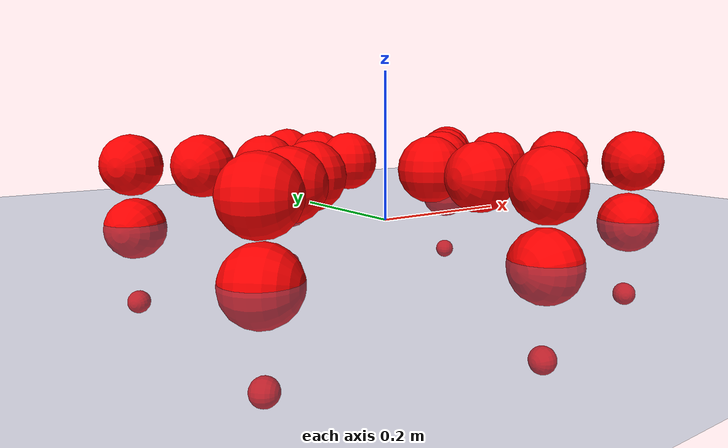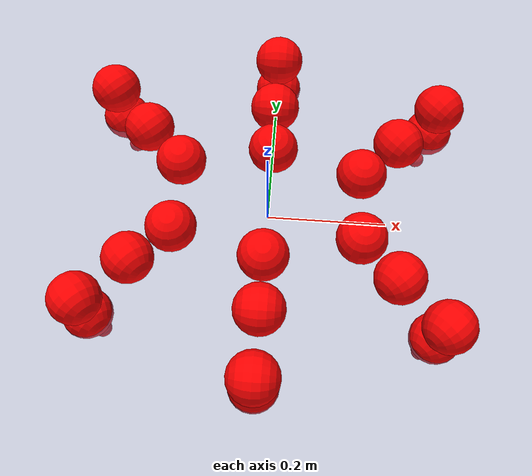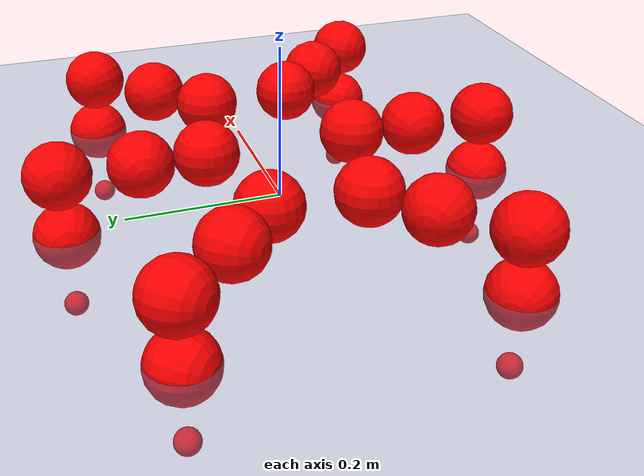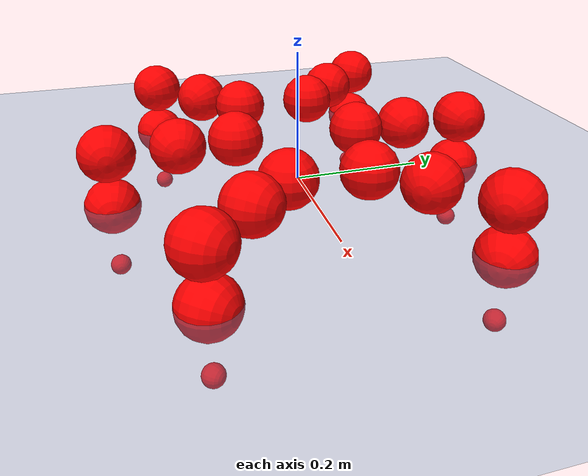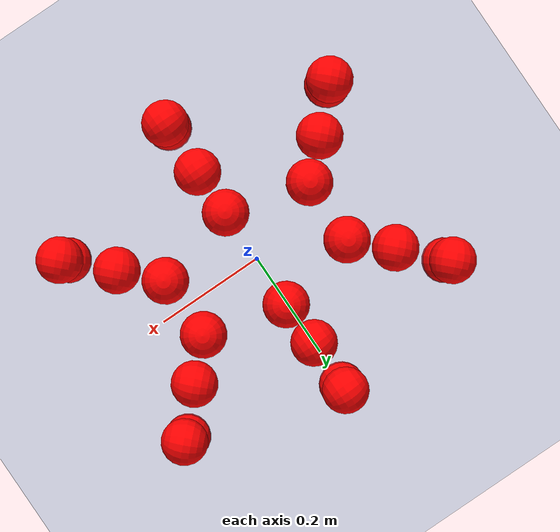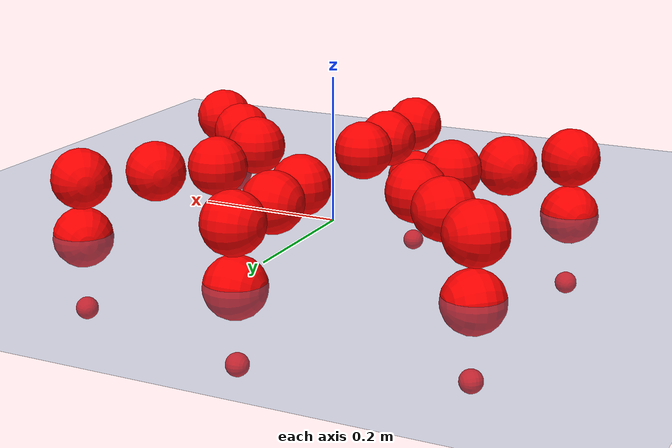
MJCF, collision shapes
<mujoco model="Golem">
  <compiler angle="radian" assetdir="assets" balanceinertia="true" inertiafromgeom="false"/>

  <option timestep="0.005" density="1.2" viscosity="2e-05"/>

  <size nkey="1"/>

  <visual>
    <quality shadowsize="8192"/>
    <map shadowclip="0.5"/>
  </visual>

  <default>
    <default class="/">
      <joint armature="0.01" damping="0.01" frictionloss="0.01"/>
      <geom contype="0" conaffinity="0" group="1" solref="-1000 -80"/>
      <site size="0.01 0.005 0.005" group="5"/>
      <general forcelimited="true" biastype="affine" gainprm="25" biasprm="0 -25 -0.5"/>
      <default class="visual">
        <geom type="mesh" group="2"/>
      </default>
      <default class="collision">
        <geom group="3"/>
      </default>
      <default class="foot">
        <geom size="0.01 0 0" condim="6" group="4" priority="1" solimp="0.015 1 0.01"/>
      </default>
      <default class="reward_collision_sphere">
        <geom group="5" rgba="1 0 0 1"/>
      </default>
    </default>
  </default>

  <asset>
    <texture type="skybox" colorspace="auto" name="//unnamed_texture_0" builtin="gradient" rgb1="0.95 0.95 0.95" rgb2="0.95 0.95 0.95" width="100" height="600"/>
    <texture type="2d" colorspace="auto" name="texplane" builtin="checker" rgb1="0.345 0.575 0.748" rgb2="0.345 0.575 0.748" markrgb="1 1 1" width="512" height="512"/>
    <material name="MatPlane" class="/" texture="texplane" texuniform="true" texrepeat="2 2" specular="0.9"/>
    <mesh name="body" class="/" file="body.stl" scale="0.001 0.001 0.001"/>
    <mesh name="coxa" class="/" file="coxa.stl" scale="0.001 0.001 0.001"/>
    <mesh name="femur" class="/" file="femur.stl" scale="0.001 0.001 0.001"/>
    <mesh name="tibia" class="/" file="tibia.stl" scale="0.001 0.001 0.001"/>
    <mesh name="tarsus" class="/" file="tarsus.stl" scale="0.001 0.001 0.001"/>
  </asset>

  <worldbody>
    <geom name="floor" class="/" size="100 100 0.125" type="plane" group="0" material="MatPlane"/>
    <light name="toplight_shadow" class="/" pos="0 0 5" dir="0.0990148 0.0990148 -0.990148" type="directional" ambient="0.04 0.04 0.04" diffuse="0.55 0.55 0.55" specular="0.12 0.12 0.12"/>
    <light name="toplight_fill" class="/" pos="0 0 5" dir="0.0990148 0.0990148 -0.990148" type="directional" castshadow="false" ambient="0.04 0.04 0.04" diffuse="0.3 0.3 0.3" specular="0.08 0.08 0.08"/>
    <body name="trunk" pos="0.000147397 -0.000529839 -0.00259515" quat="1 -0.000313532 -0.000503054 -0.000701403">
      <inertial pos="0.00310784 -0.00303623 -0.000268699" quat="0.999936 0.000345844 0.00412309 0.0104992" mass="3.80701" diaginertia="0.00727869 0.00648015 0.0250303"/>
      <joint name="//unnamed_joint_0" type="free"/>
      <geom name="//unnamed_geom_1" class="/" pos="0 0 0.0769057" quat="1 0 0 0" type="mesh" rgba="0.9 0.9 0.9 1" mesh="body"/>
      <site name="imu" class="/" pos="0.114302 0.00822796 0.119291" size="0.0102594"/>
      <camera name="track" class="/" pos="0 -1.85997 0" quat="0.707107 0.707107 0 0" mode="trackcom"/>
      <camera name="ego_camera" class="/" pos="0.123003 0 0.120165" quat="-0.5 -0.5 0.5 0.5"/>
      <body name="coxa_RR" pos="-0.16925 -0.0778484 0.0779065" quat="0.382722 -0.000207231 -9.63167e-05 -0.923863">
        <inertial pos="0.00211011 0.00220283 -0.00253216" quat="0.999907 0.0121158 -0.000139185 -0.00628035" mass="0.214716" diaginertia="0.00722929 0.00688622 0.0242454"/>
        <joint name="coxa_joint_RR" class="/" pos="0 0 0" axis="0.00471638 -0.0057599 -0.999972" stiffness="0.0061167" range="-3.08482 3.09603" armature="0.0104897" damping="0" frictionloss="0.011552"/>
        <geom name="//unnamed_geom_2" class="/" type="mesh" rgba="0.2 0.2 0.2 1" mesh="coxa"/>
        <geom name="//unnamed_geom_3" class="reward_collision_sphere" size="0.0410375" pos="-0.0283852 0 0"/>
        <body name="femur_RR" pos="0.0536438 -0.00212619 -0.000538243" quat="0.500089 -0.500056 0.500056 0.499799">
          <inertial pos="-0.000130377 4.62797e-05 0.00277632" quat="0.999913 0.00551704 -0.0103312 0.0061472" mass="0.210372" diaginertia="0.00771995 0.0066092 0.0246715"/>
          <joint name="femur_joint_RR" class="/" pos="0 0 0" axis="0.00011626 -0.000965707 -1" range="-3.09491 3.09377" armature="0.0110255" damping="0.0164269" frictionloss="0.010141"/>
          <geom name="//unnamed_geom_4" class="/" type="mesh" rgba="0.9 0.9 0.9 1" mesh="femur"/>
          <geom name="//unnamed_geom_5" class="reward_collision_sphere" size="0.0410375"/>
          <body name="tibia_RR" pos="-0.00229536 -0.0980003 0.00157701" quat="8.16725e-05 1 -0.000296498 0.000158317">
            <inertial pos="5.73025e-05 0.000669697 0.000682044" quat="1 0.000316376 0.000751193 0.000386599" mass="0.212306" diaginertia="0.00745679 0.00681579 0.0245464"/>
            <joint name="tibia_joint_RR" class="/" pos="0 0 0" axis="0.0038446 -0.00350619 0.999986" range="-3.12725 3.15927" armature="0.00870277" damping="0.0143332" frictionloss="0.00993386"/>
            <geom name="//unnamed_geom_6" class="/" type="mesh" rgba="0.2 0.2 0.2 1" mesh="tibia"/>
            <geom name="//unnamed_geom_7" class="reward_collision_sphere" size="0.0410375"/>
            <body name="tarsus_RR" pos="0.082668 0.00203842 -0.000212493" quat="0.999999 -0.000944142 0.00100987 -0.000293129">
              <inertial pos="0.0599108 -0.000281885 0.00242285" quat="0.505887 0.507876 0.494336 0.491703" mass="0.213042" diaginertia="0.0075271 0.00668935 0.0245024"/>
              <joint name="tarsus_joint_RR" class="/" pos="0 0 0" axis="0.0124499 -0.00496352 0.99991" range="-3.19545 3.15211" armature="0.00913135" damping="0.0165397" frictionloss="0.010243"/>
              <geom name="//unnamed_geom_8" class="/" type="mesh" rgba="0.9 0.9 0.9 1" mesh="tarsus"/>
              <geom name="foot_1" class="foot" size="0.00966371" pos="0.105972 0 0" quat="0 -0.707107 0 0.707107"/>
              <geom name="//unnamed_geom_10" class="reward_collision_sphere" size="0.0410375"/>
              <geom name="//unnamed_geom_11" class="reward_collision_sphere" size="0.0153891" pos="0.101714 0 0"/>
              <site name="foot_1" class="foot" pos="0.105972 0 0" quat="0 -0.707107 0 0.707107" size="0.0102594"/>
            </body>
          </body>
        </body>
      </body>
      <body name="coxa_RM" pos="-0.000477811 -0.123858 0.0795139" quat="0.706943 0.000163341 -0.000493088 -0.70727">
        <inertial pos="-0.000386022 0.000409689 -0.00149261" quat="1 0.000466382 -0.000114255 -0.00051035" mass="0.207735" diaginertia="0.00747051 0.00698004 0.0256295"/>
        <joint name="coxa_joint_RM" class="/" pos="0 0 0" axis="-0.000158363 0.000154353 -1" range="-3.13257 3.08207" armature="0.00931534" damping="0.0201854" frictionloss="0.0115713"/>
        <geom name="//unnamed_geom_12" class="/" type="mesh" rgba="0.2 0.2 0.2 1" mesh="coxa"/>
        <geom name="//unnamed_geom_13" class="reward_collision_sphere" size="0.0410375" pos="-0.0283852 0 0"/>
        <body name="femur_RM" pos="0.0568424 0.000723767 -0.00186799" quat="0.499992 -0.499967 0.49993 0.500111">
          <inertial pos="-0.000505522 0.00226206 -0.00029483" quat="0.999997 0.00113692 0.00184374 0.0011734" mass="0.224714" diaginertia="0.00748073 0.00707456 0.0243014"/>
          <joint name="femur_joint_RM" class="/" pos="0 0 0" axis="0.00196697 0.00079631 -0.999998" range="-3.10383 3.1954" armature="0.0114829" damping="0.0210588" frictionloss="0.0108511"/>
          <geom name="//unnamed_geom_14" class="/" type="mesh" rgba="0.9 0.9 0.9 1" mesh="femur"/>
          <geom name="//unnamed_geom_15" class="reward_collision_sphere" size="0.0410375"/>
          <body name="tibia_RM" pos="6.94457e-05 -0.100355 -0.000659752" quat="0.000124276 1 -6.1277e-05 9.45025e-05">
            <inertial pos="-0.000876066 0.000258122 0.00208826" quat="0.999988 0.00470654 -0.000411492 -0.0012456" mass="0.217914" diaginertia="0.00767637 0.00694822 0.0241757"/>
            <joint name="tibia_joint_RM" class="/" pos="0 0 0" axis="0.00266234 -0.000643967 0.999996" stiffness="0.00029697" range="-3.08671 3.1884" armature="0.00999873" damping="0.0192484" frictionloss="0.0106263"/>
            <geom name="//unnamed_geom_16" class="/" type="mesh" rgba="0.2 0.2 0.2 1" mesh="tibia"/>
            <geom name="//unnamed_geom_17" class="reward_collision_sphere" size="0.0410375"/>
            <body name="tarsus_RM" pos="0.0841035 0.000457966 0.00170345" quat="0.999999 0.000611152 0.000291745 -0.00099549">
              <inertial pos="0.0563904 -0.00180227 -0.000164334" quat="0.501081 0.500599 0.501507 0.4968" mass="0.223809" diaginertia="0.00774793 0.00703781 0.0251411"/>
              <joint name="tarsus_joint_RM" class="/" pos="0 0 0" axis="0.0126536 -0.00112248 0.999919" range="-3.08937 3.11679" armature="0.00882713" damping="0.0113069" frictionloss="0.0109802"/>
              <geom name="//unnamed_geom_18" class="/" type="mesh" rgba="0.9 0.9 0.9 1" mesh="tarsus"/>
              <geom name="foot_2" class="foot" size="0.00922485" pos="0.105972 0 0" quat="0 -0.707107 0 0.707107"/>
              <geom name="//unnamed_geom_20" class="reward_collision_sphere" size="0.0410375"/>
              <geom name="//unnamed_geom_21" class="reward_collision_sphere" size="0.0153891" pos="0.101714 0 0"/>
              <site name="foot_2" class="foot" pos="0.105972 0 0" quat="0 -0.707107 0 0.707107" size="0.0102594"/>
            </body>
          </body>
        </body>
      </body>
      <body name="coxa_RF" pos="0.17098 -0.0767572 0.0786034" quat="0.92381 0.000126107 0.000317785 -0.382852">
        <inertial pos="-0.000502205 -0.000811632 -0.00196731" quat="0.999911 -0.00722334 0.0100173 -0.00499961" mass="0.213534" diaginertia="0.00748216 0.00687833 0.0247001"/>
        <joint name="coxa_joint_RF" class="/" pos="0 0 0" axis="0.00460743 0.00546775 -0.999974" range="-3.15441 3.08573" armature="0.00997239" damping="0.00712058" frictionloss="0.0107976"/>
        <geom name="//unnamed_geom_22" class="/" type="mesh" rgba="0.2 0.2 0.2 1" mesh="coxa"/>
        <geom name="//unnamed_geom_23" class="reward_collision_sphere" size="0.0410375" pos="-0.0283852 0 0"/>
        <body name="femur_RF" pos="0.056558 -0.00175364 0.00196327" quat="0.499341 -0.499719 0.500534 0.500406">
          <inertial pos="0.000303276 -0.000931961 -0.00155013" quat="0.999902 -0.00567761 -0.00984528 -0.00819049" mass="0.214531" diaginertia="0.00726436 0.00673864 0.0242281"/>
          <joint name="femur_joint_RF" class="/" pos="0 0 0" axis="0.00427969 0.0121999 -0.999916" range="-3.08433 3.1491" armature="0.00989671" damping="0.00881465" frictionloss="0.0101796"/>
          <geom name="//unnamed_geom_24" class="/" type="mesh" rgba="0.9 0.9 0.9 1" mesh="femur"/>
          <geom name="//unnamed_geom_25" class="reward_collision_sphere" size="0.0410375"/>
          <body name="tibia_RF" pos="-0.000647881 -0.0999387 0.0010814" quat="-0.000760906 0.999999 -0.000801027 -0.00064921">
            <inertial pos="0.000238199 -0.00084837 -0.00187222" quat="0.999983 0.00546536 0.000611178 -0.00167627" mass="0.224838" diaginertia="0.0073983 0.00690284 0.0252556"/>
            <joint name="tibia_joint_RF" class="/" pos="0 0 0" axis="0.00177913 0.00395945 0.999991" stiffness="0.0194114" range="-3.19598 3.12108" armature="0.00969942" damping="0.0338322" frictionloss="0.00885961"/>
            <geom name="//unnamed_geom_26" class="/" type="mesh" rgba="0.2 0.2 0.2 1" mesh="tibia"/>
            <geom name="//unnamed_geom_27" class="reward_collision_sphere" size="0.0410375"/>
            <body name="tarsus_RF" pos="0.0846646 -0.00306017 0.000247674" quat="1 -2.42949e-05 -4.34035e-05 -4.74337e-05">
              <inertial pos="0.059158 0.000789491 0.000398589" quat="0.507118 0.493373 0.504994 0.494363" mass="0.205957" diaginertia="0.00706332 0.00657399 0.0242778"/>
              <joint name="tarsus_joint_RF" class="/" pos="0 0 0" axis="8.28982e-05 -0.000157681 1" stiffness="0.00699096" range="-3.14453 3.11419" armature="0.0092814" damping="0.0073172" frictionloss="0.0116854"/>
              <geom name="//unnamed_geom_28" class="/" type="mesh" rgba="0.9 0.9 0.9 1" mesh="tarsus"/>
              <geom name="foot_3" class="foot" size="0.0111622" pos="0.105972 0 0" quat="0 -0.707107 0 0.707107"/>
              <geom name="//unnamed_geom_30" class="reward_collision_sphere" size="0.0410375"/>
              <geom name="//unnamed_geom_31" class="reward_collision_sphere" size="0.0153891" pos="0.101714 0 0"/>
              <site name="foot_3" class="foot" pos="0.105972 0 0" quat="0 -0.707107 0 0.707107" size="0.0102594"/>
            </body>
          </body>
        </body>
      </body>
      <body name="coxa_LR" pos="-0.167427 0.0799876 0.0788265" quat="0.382444 0.000731307 4.37318e-05 0.923979">
        <inertial pos="-0.00267358 0.00160444 -0.0012545" quat="0.999986 -0.00366296 -0.00344884 0.00146604" mass="0.220837" diaginertia="0.00745445 0.00681014 0.0253908"/>
        <joint name="coxa_joint_LR" class="/" pos="0 0 0" axis="-0.0117441 0.00352506 -0.999925" stiffness="0.0156782" range="-3.1948 3.15867" armature="0.0101458" damping="0.0151221" frictionloss="0.0114501"/>
        <geom name="//unnamed_geom_32" class="/" type="mesh" rgba="0.2 0.2 0.2 1" mesh="coxa"/>
        <geom name="//unnamed_geom_33" class="reward_collision_sphere" size="0.0410375" pos="-0.0283852 0 0"/>
        <body name="femur_LR" pos="0.0563343 0.001884 0.000380808" quat="0.500324 -0.500648 0.499998 0.499029">
          <inertial pos="-0.000497566 0.00226575 0.00221337" quat="0.999998 0.00195453 0.00104194 -5.16103e-05" mass="0.204519" diaginertia="0.00763929 0.00664114 0.0237887"/>
          <joint name="femur_joint_LR" class="/" pos="0 0 0" axis="0.00410057 -0.00125224 0.999991" range="-3.19608 3.19073" armature="0.00999183" damping="0.0112062" frictionloss="0.00983679"/>
          <geom name="//unnamed_geom_34" class="/" type="mesh" rgba="0.9 0.9 0.9 1" mesh="femur"/>
          <geom name="//unnamed_geom_35" class="reward_collision_sphere" size="0.0410375"/>
          <body name="tibia_LR" pos="0.000647493 -0.100662 -0.00264163" quat="0.000640016 0.999999 0.000609084 0.000870754">
            <inertial pos="-0.002738 0.00248009 0.00208842" quat="0.999926 -0.000352453 0.000106644 0.0121282" mass="0.22274" diaginertia="0.00780892 0.00732207 0.0246313"/>
            <joint name="tibia_joint_LR" class="/" pos="0 0 0" axis="-0.00247756 -0.00615216 -0.999978" range="-3.1316 3.18431" armature="0.00920122" damping="0" frictionloss="0.0103158"/>
            <geom name="//unnamed_geom_36" class="/" type="mesh" rgba="0.2 0.2 0.2 1" mesh="tibia"/>
            <geom name="//unnamed_geom_37" class="reward_collision_sphere" size="0.0410375"/>
            <body name="tarsus_LR" pos="0.0853224 -0.00166459 -0.000134485" quat="1 2.87062e-05 7.31235e-05 -0.000125116">
              <inertial pos="0.0565079 -0.00125495 0.000943673" quat="0.500564 0.499448 0.500884 0.499101" mass="0.207358" diaginertia="0.00735245 0.00670425 0.0251752"/>
              <joint name="tarsus_joint_LR" class="/" pos="0 0 0" axis="-0.00300449 -0.00166297 -0.999994" stiffness="0.00961245" range="-3.16544 3.1935" armature="0.0101813" damping="0.00727535" frictionloss="0.00885937"/>
              <geom name="//unnamed_geom_38" class="/" type="mesh" rgba="0.9 0.9 0.9 1" mesh="tarsus"/>
              <geom name="foot_4" class="foot" size="0.0113678" pos="0.105972 0 0" quat="0.707107 0 -0.707107 0"/>
              <geom name="//unnamed_geom_40" class="reward_collision_sphere" size="0.0410375"/>
              <geom name="//unnamed_geom_41" class="reward_collision_sphere" size="0.0153891" pos="0.101714 0 0"/>
              <site name="foot_4" class="foot" pos="0.105972 0 0" quat="0.707107 0 -0.707107 0" size="0.0102594"/>
            </body>
          </body>
        </body>
      </body>
      <body name="coxa_LM" pos="0.0018317 0.122145 0.0762847" quat="0.707116 0.000293281 0.000849299 0.707097">
        <inertial pos="-0.000403321 -0.000736047 -0.000586277" quat="0.999992 0.00260765 -0.00293 0.000904114" mass="0.2138" diaginertia="0.00803432 0.00715 0.0254952"/>
        <joint name="coxa_joint_LM" class="/" pos="0 0 0" axis="0.0120105 0.00733948 -0.999901" range="-3.15561 3.1607" armature="0.0115357" damping="0.00859718" frictionloss="0.0103594"/>
        <geom name="//unnamed_geom_42" class="/" type="mesh" rgba="0.2 0.2 0.2 1" mesh="coxa"/>
        <geom name="//unnamed_geom_43" class="reward_collision_sphere" size="0.0410375" pos="-0.0283852 0 0"/>
        <body name="femur_LM" pos="0.0531935 0.00268916 -0.000674123" quat="0.500185 -0.499548 0.499985 0.500281">
          <inertial pos="-0.00217862 0.000807999 0.000347105" quat="0.999941 -0.00797307 0.00572408 0.00475055" mass="0.210192" diaginertia="0.00730609 0.00671268 0.0238816"/>
          <joint name="femur_joint_LM" class="/" pos="0 0 0" axis="-0.00324252 -0.0115816 0.999928" stiffness="0.00859985" range="-3.10751 3.14086" armature="0.00899362" damping="0.00717804" frictionloss="0.00942295"/>
          <geom name="//unnamed_geom_44" class="/" type="mesh" rgba="0.9 0.9 0.9 1" mesh="femur"/>
          <geom name="//unnamed_geom_45" class="reward_collision_sphere" size="0.0410375"/>
          <body name="tibia_LM" pos="-0.000580795 -0.0981025 -0.000696127" quat="0.000748717 0.999999 0.000993599 -0.000855782">
            <inertial pos="0.00293009 -0.000555806 -0.000237358" quat="0.999995 -0.0016397 -0.0018845 0.00169635" mass="0.225328" diaginertia="0.00762034 0.00699393 0.0251486"/>
            <joint name="tibia_joint_LM" class="/" pos="0 0 0" axis="0.00555717 -0.00664431 -0.999962" stiffness="0.00383019" range="-3.10436 3.08199" armature="0.00968823" damping="0.0138691" frictionloss="0.0112038"/>
            <geom name="//unnamed_geom_46" class="/" type="mesh" rgba="0.2 0.2 0.2 1" mesh="tibia"/>
            <geom name="//unnamed_geom_47" class="reward_collision_sphere" size="0.0410375"/>
            <body name="tarsus_LM" pos="0.0822473 -0.00188474 -0.000189801" quat="1 1.5238e-05 2.33961e-05 -6.66e-05">
              <inertial pos="0.0538471 -0.00140169 -0.000497268" quat="0.511373 0.497439 0.49878 0.492209" mass="0.219815" diaginertia="0.00747062 0.00708394 0.0244677"/>
              <joint name="tarsus_joint_LM" class="/" pos="0 0 0" axis="-0.0117223 0.00847967 -0.999895" stiffness="0.00230711" range="-3.13317 3.13328" armature="0.00970818" damping="0.00752951" frictionloss="0.0102553"/>
              <geom name="//unnamed_geom_48" class="/" type="mesh" rgba="0.9 0.9 0.9 1" mesh="tarsus"/>
              <geom name="foot_5" class="foot" size="0.0114063" pos="0.105972 0 0" quat="0.707107 0 -0.707107 0"/>
              <geom name="//unnamed_geom_50" class="reward_collision_sphere" size="0.0410375"/>
              <geom name="//unnamed_geom_51" class="reward_collision_sphere" size="0.0153891" pos="0.101714 0 0"/>
              <site name="foot_5" class="foot" pos="0.105972 0 0" quat="0.707107 0 -0.707107 0" size="0.0102594"/>
            </body>
          </body>
        </body>
      </body>
      <body name="coxa_LF" pos="0.169074 0.0770865 0.0756188" quat="0.924065 -0.000272665 -0.000793384 0.382234">
        <inertial pos="-0.000565379 0.000571701 -0.00234652" quat="0.999947 -0.00562899 0.0031497 -0.00805666" mass="0.212795" diaginertia="0.0073863 0.00681808 0.0250844"/>
        <joint name="coxa_joint_LF" class="/" pos="0 0 0" axis="0.000170651 -0.00138844 -0.999999" range="-3.19524 3.13544" armature="0.0116334" damping="0.0204698" frictionloss="0.00916213"/>
        <geom name="//unnamed_geom_52" class="/" type="mesh" rgba="0.2 0.2 0.2 1" mesh="coxa"/>
        <geom name="//unnamed_geom_53" class="reward_collision_sphere" size="0.0410375" pos="-0.0283852 0 0"/>
        <body name="femur_LF" pos="0.0576511 0.000844953 0.000515037" quat="0.500373 -0.499473 0.499517 0.500636">
          <inertial pos="0.000476744 -0.00293169 0.00202822" quat="0.999999 0.000953913 -0.000631448 -0.000471166" mass="0.218215" diaginertia="0.00742861 0.00682266 0.0246805"/>
          <joint name="femur_joint_LF" class="/" pos="0 0 0" axis="0.00563407 -0.000434186 0.999984" range="-3.19588 3.17919" armature="0.0107677" damping="0" frictionloss="0.0106772"/>
          <geom name="//unnamed_geom_54" class="/" type="mesh" rgba="0.9 0.9 0.9 1" mesh="femur"/>
          <geom name="//unnamed_geom_55" class="reward_collision_sphere" size="0.0410375"/>
          <body name="tibia_LF" pos="0.000753146 -0.101169 0.0021904" quat="0.000965114 0.999999 0.000857045 0.000554563">
            <inertial pos="0.00260557 0.00114989 -0.00279794" quat="0.999992 0.000587038 -0.00376868 -0.00139773" mass="0.218716" diaginertia="0.00720369 0.00690327 0.0237188"/>
            <joint name="tibia_joint_LF" class="/" pos="0 0 0" axis="-0.00420298 -0.0106113 -0.999935" stiffness="0.0117284" range="-3.15696 3.09978" armature="0.00894936" damping="0.0157016" frictionloss="0.0112326"/>
            <geom name="//unnamed_geom_56" class="/" type="mesh" rgba="0.2 0.2 0.2 1" mesh="tibia"/>
            <geom name="//unnamed_geom_57" class="reward_collision_sphere" size="0.0410375"/>
            <body name="tarsus_LF" pos="0.0805997 0.00177216 -0.00210316" quat="1 -1.91393e-06 -3.89455e-06 -2.42877e-07">
              <inertial pos="0.057726 0.00225229 -0.00189337" quat="0.49826 0.499686 0.503177 0.498862" mass="0.207417" diaginertia="0.00745892 0.00687007 0.0250033"/>
              <joint name="tarsus_joint_LF" class="/" pos="0 0 0" axis="0.00154055 0.00592361 -0.999981" stiffness="0.0299356" range="-3.08408 3.09235" armature="0.0104051" damping="0.022297" frictionloss="0.00882878"/>
              <geom name="//unnamed_geom_58" class="/" type="mesh" rgba="0.9 0.9 0.9 1" mesh="tarsus"/>
              <geom name="foot_6" class="foot" size="0.0107987" pos="0.105972 0 0" quat="0.707107 0 -0.707107 0"/>
              <geom name="//unnamed_geom_60" class="reward_collision_sphere" size="0.0410375"/>
              <geom name="//unnamed_geom_61" class="reward_collision_sphere" size="0.0153891" pos="0.101714 0 0"/>
              <site name="foot_6" class="foot" pos="0.105972 0 0" quat="0.707107 0 -0.707107 0" size="0.0102594"/>
            </body>
          </body>
        </body>
      </body>
    </body>
  </worldbody>

  <contact>
    <pair class="/" geom1="floor" geom2="foot_1" name="//unnamed_contact_0"/>
    <pair class="/" geom1="floor" geom2="foot_2" name="//unnamed_contact_1"/>
    <pair class="/" geom1="floor" geom2="foot_3" name="//unnamed_contact_2"/>
    <pair class="/" geom1="floor" geom2="foot_4" name="//unnamed_contact_3"/>
    <pair class="/" geom1="floor" geom2="foot_5" name="//unnamed_contact_4"/>
    <pair class="/" geom1="floor" geom2="foot_6" name="//unnamed_contact_5"/>
  </contact>

  <actuator>
    <general name="coxa_joint_RR" class="/" joint="coxa_joint_RR" forcerange="-7.46386 7.46386" gainprm="24.4733" biasprm="0 -24.4733 -0.563827"/>
    <general name="femur_joint_RR" class="/" joint="femur_joint_RR" forcerange="-8.01059 8.01059" gainprm="24.4733" biasprm="0 -24.4733 -0.563827"/>
    <general name="tibia_joint_RR" class="/" joint="tibia_joint_RR" forcerange="-7.41129 7.41129" gainprm="24.4733" biasprm="0 -24.4733 -0.563827"/>
    <general name="tarsus_joint_RR" class="/" joint="tarsus_joint_RR" forcerange="-8.00731 8.00731" gainprm="24.4733" biasprm="0 -24.4733 -0.563827"/>
    <general name="coxa_joint_RM" class="/" joint="coxa_joint_RM" forcerange="-6.75695 6.75695" gainprm="24.4733" biasprm="0 -24.4733 -0.563827"/>
    <general name="femur_joint_RM" class="/" joint="femur_joint_RM" forcerange="-7.99079 7.99079" gainprm="24.4733" biasprm="0 -24.4733 -0.563827"/>
    <general name="tibia_joint_RM" class="/" joint="tibia_joint_RM" forcerange="-8.06618 8.06618" gainprm="24.4733" biasprm="0 -24.4733 -0.563827"/>
    <general name="tarsus_joint_RM" class="/" joint="tarsus_joint_RM" forcerange="-8.25236 8.25236" gainprm="24.4733" biasprm="0 -24.4733 -0.563827"/>
    <general name="coxa_joint_RF" class="/" joint="coxa_joint_RF" forcerange="-6.96758 6.96758" gainprm="24.4733" biasprm="0 -24.4733 -0.563827"/>
    <general name="femur_joint_RF" class="/" joint="femur_joint_RF" forcerange="-7.52836 7.52836" gainprm="24.4733" biasprm="0 -24.4733 -0.563827"/>
    <general name="tibia_joint_RF" class="/" joint="tibia_joint_RF" forcerange="-8.17399 8.17399" gainprm="24.4733" biasprm="0 -24.4733 -0.563827"/>
    <general name="tarsus_joint_RF" class="/" joint="tarsus_joint_RF" forcerange="-7.62712 7.62712" gainprm="24.4733" biasprm="0 -24.4733 -0.563827"/>
    <general name="coxa_joint_LR" class="/" joint="coxa_joint_LR" forcerange="-7.46988 7.46988" gainprm="24.4733" biasprm="0 -24.4733 -0.563827"/>
    <general name="femur_joint_LR" class="/" joint="femur_joint_LR" forcerange="-7.55873 7.55873" gainprm="24.4733" biasprm="0 -24.4733 -0.563827"/>
    <general name="tibia_joint_LR" class="/" joint="tibia_joint_LR" forcerange="-7.62959 7.62959" gainprm="24.4733" biasprm="0 -24.4733 -0.563827"/>
    <general name="tarsus_joint_LR" class="/" joint="tarsus_joint_LR" forcerange="-7.20791 7.20791" gainprm="24.4733" biasprm="0 -24.4733 -0.563827"/>
    <general name="coxa_joint_LM" class="/" joint="coxa_joint_LM" forcerange="-7.15093 7.15093" gainprm="24.4733" biasprm="0 -24.4733 -0.563827"/>
    <general name="femur_joint_LM" class="/" joint="femur_joint_LM" forcerange="-7.2451 7.2451" gainprm="24.4733" biasprm="0 -24.4733 -0.563827"/>
    <general name="tibia_joint_LM" class="/" joint="tibia_joint_LM" forcerange="-7.4564 7.4564" gainprm="24.4733" biasprm="0 -24.4733 -0.563827"/>
    <general name="tarsus_joint_LM" class="/" joint="tarsus_joint_LM" forcerange="-8.23523 8.23523" gainprm="24.4733" biasprm="0 -24.4733 -0.563827"/>
    <general name="coxa_joint_LF" class="/" joint="coxa_joint_LF" forcerange="-6.69857 6.69857" gainprm="24.4733" biasprm="0 -24.4733 -0.563827"/>
    <general name="femur_joint_LF" class="/" joint="femur_joint_LF" forcerange="-7.55864 7.55864" gainprm="24.4733" biasprm="0 -24.4733 -0.563827"/>
    <general name="tibia_joint_LF" class="/" joint="tibia_joint_LF" forcerange="-7.538 7.538" gainprm="24.4733" biasprm="0 -24.4733 -0.563827"/>
    <general name="tarsus_joint_LF" class="/" joint="tarsus_joint_LF" forcerange="-7.62952 7.62952" gainprm="24.4733" biasprm="0 -24.4733 -0.563827"/>
  </actuator>

  <sensor>
    <gyro site="imu" name="imu_angular_velocity"/>
    <velocimeter site="imu" name="imu_linear_velocity"/>
    <framelinvel objtype="site" objname="foot_1" name="foot_1_global_linear_velocity"/>
    <framelinvel objtype="site" objname="foot_2" name="foot_2_global_linear_velocity"/>
    <framelinvel objtype="site" objname="foot_3" name="foot_3_global_linear_velocity"/>
    <framelinvel objtype="site" objname="foot_4" name="foot_4_global_linear_velocity"/>
    <framelinvel objtype="site" objname="foot_5" name="foot_5_global_linear_velocity"/>
    <framelinvel objtype="site" objname="foot_6" name="foot_6_global_linear_velocity"/>
  </sensor>

  <keyframe>
    <key name="home" qpos="0 0 0.1457 1 0 0 0 0 0 0 0 0 0 0 0 0 0 0 0 0 0 0 0 0 0 0 0 0 0 0 0"/>
  </keyframe>
</mujoco>
